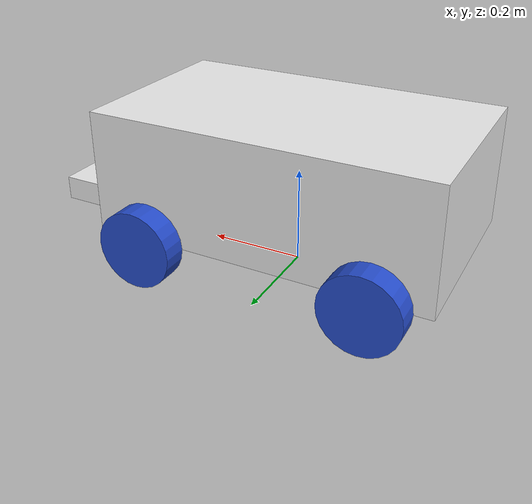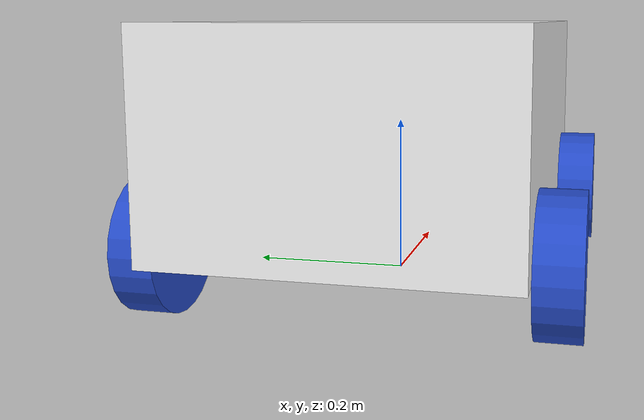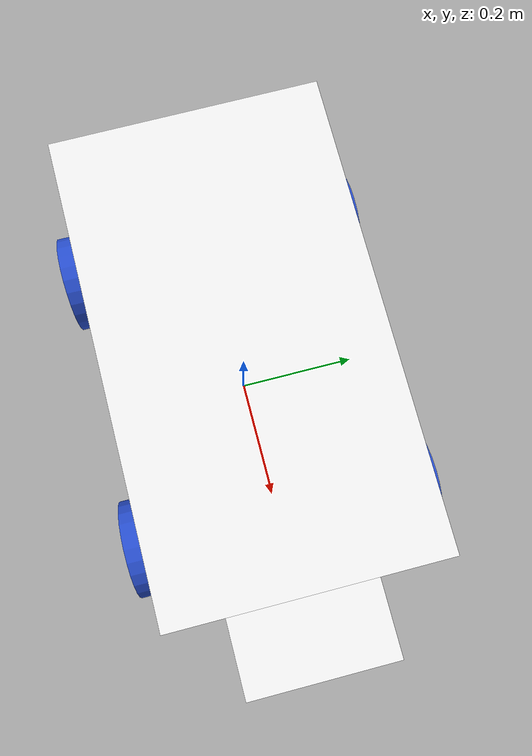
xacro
<?xml version="1.0"?>

<robot xmlns:xacro="http://www.ros.org/wiki/xacro">

    <xacro:property name="base_length" value="0.7"/>
    <xacro:property name="base_width" value ="0.4"/>
    <xacro:property name="base_height" value="0.25"/>
    <xacro:property name="wheel_radius" value="0.08"/>
    <xacro:property name="wheel_length" value="0.05"/>
    <xacro:property name="support_length" value="0.15"/>
    <xacro:property name="support_width" value="0.25"/>
    <xacro:property name="support_height" value="0.05"/>
    <xacro:property name="lidar_radius" value="0.05"/>
    <xacro:property name="lidar_length" value="0.08"/>

    <xacro:property name="base_mass" value="10.0"/>
    <xacro:property name="wheel_mass" value="5.0"/>
    <xacro:property name="support_lidar_mass" value="0.3"/>

    <xacro:macro name="wheel_link" params="prefix">
        <link name="${prefix}_wheel_link">
            <visual>
                <geometry>
                    <cylinder radius="${wheel_radius}" length="${wheel_length}"/>
                </geometry>
                <origin xyz="0 0 0" rpy="${pi/2.0} 0 0"/>
                <material name="blue"/>
            </visual>
            <collision>
                <geometry>
                    <sphere radius="${wheel_radius}"/>
                </geometry>
                <origin xyz="0 0 0" rpy="0 0 0"/>
            </collision>
            <xacro:cylinder_inertia m="${wheel_mass}" r="${wheel_radius}" h="${wheel_length}"
                                    o_xyz="0 0 0" o_rpy="${pi / 2.0} 0 0"/>
        </link>
        <gazebo reference="${prefix}_wheel_link">
                <mu1>0.0</mu1>
                <mu2>0.0</mu2>
                <kp>1000000.0</kp> <kd>1.0</kd>
        </gazebo>
    </xacro:macro>

    <link name="base_footprint"/>

    <link name="base_link">
        <visual>
            <geometry>
                <box size="${base_length} ${base_width} ${base_height}"/>
            </geometry>
            <material name="white"/>
            <origin xyz="0 0 ${base_height/2}" rpy="0 0 0"/>
        </visual>
        <collision>
            <geometry>
                <box size="${base_length} ${base_width} ${base_height}"/>
            </geometry>
            <origin xyz="0 0 ${base_height/2.0}" rpy="0 0 0"/>
        </collision>
        <xacro:box_inertia m="${base_mass}" x="${base_length}" y="${base_width}" z="${base_height}"
                           o_xyz="0 0 ${base_height/2.0}" o_rpy="0 0 0"/>
    </link>

    <xacro:wheel_link prefix="rear_left"/>
    <xacro:wheel_link prefix="rear_right"/>
    <xacro:wheel_link prefix="front_left"/>
    <xacro:wheel_link prefix="front_right"/>

    <link name="support_link">
        <visual>
            <geometry>
                <box size="${support_length} ${support_width} ${support_height}"/>
            </geometry>
            <material name="white"/>
            <origin xyz="${support_length/2} 0 0" rpy="0 0 0"/>
        </visual>
        <collision>
            <geometry>
                <box size="${support_length} ${support_width} ${support_height}"/>
            </geometry>
            <origin xyz="${support_length/2} 0 0" rpy="0 0 0"/>
        </collision>
        <xacro:box_inertia m="${support_lidar_mass}" x="${support_length}" y="${support_width}" z="${support_height}"
                           o_xyz="${support_length/2} 0 0" o_rpy="0 0 0"/>
    </link>

    <joint name="base_joint" type="fixed">
        <parent link="base_footprint"/>
        <child link="base_link"/>
        <origin xyz="0 0 ${wheel_radius}" rpy="0 0 0"/>
    </joint>

    <joint name="base_rear_left_wheel" type="continuous">
        <parent link="base_link"/>
        <child link="rear_left_wheel_link"/>
        <origin xyz="${-base_length/3} ${(base_width/2)+(wheel_length/2)} 0" rpy="0 0 0"/>
        <axis xyz="0 1 0"/>
    </joint>

    <joint name="base_rear_right_wheel" type="continuous">
        <parent link="base_link"/>
        <child link="rear_right_wheel_link"/>
        <origin xyz="${-base_length/3} ${(-base_width/2)-(wheel_length/2)} 0" rpy="0 0 0"/>
        <axis xyz="0 1 0"/>
    </joint>

    <joint name="base_front_left_wheel" type="continuous">
        <parent link="base_link"/>
        <child link="front_left_wheel_link"/>
        <origin xyz="${base_length/3} ${(base_width/2)+(wheel_length/2)} 0" rpy="0 0 0"/>
        <axis xyz="0 1 0"/>
    </joint>

    <joint name="base_front_right_wheel" type="continuous">
        <parent link="base_link"/>
        <child link="front_right_wheel_link"/>
        <origin xyz="${base_length/3} ${(-base_width/2)-(wheel_length/2)} 0" rpy="0 0 0"/>
        <axis xyz="0 1 0"/>
    </joint>

    <joint name="base_support" type="fixed">
        <parent link="base_link"/>
        <child link="support_link"/>
        <origin xyz="${(base_length/2)} 0 ${support_height/2}" rpy="0 0 0"/>
    </joint>

</robot>
